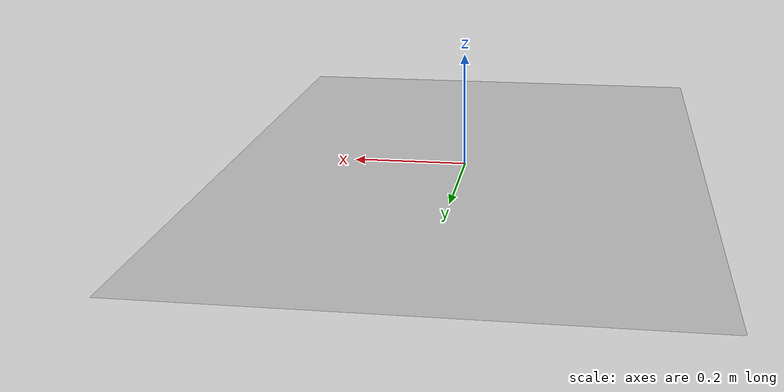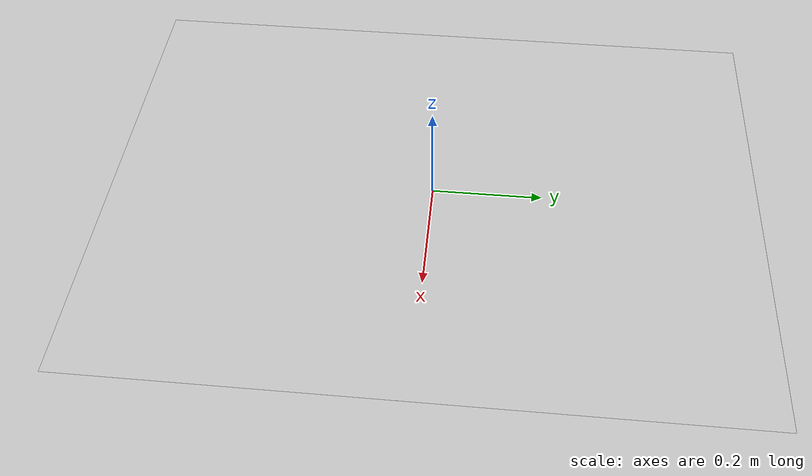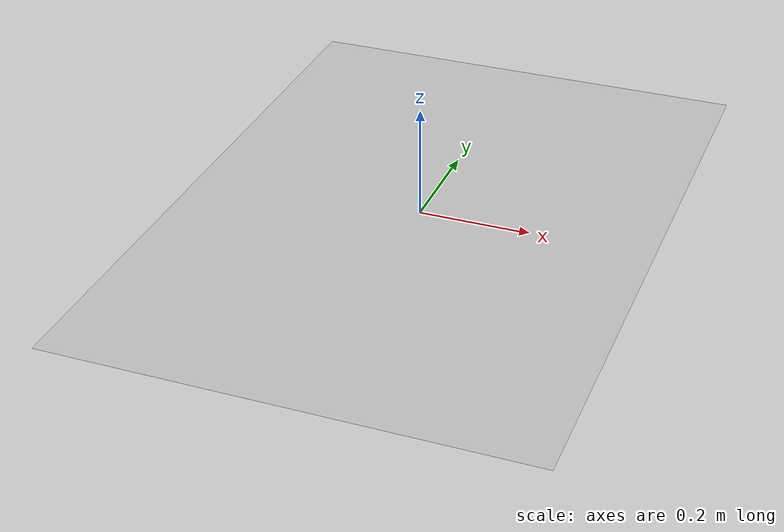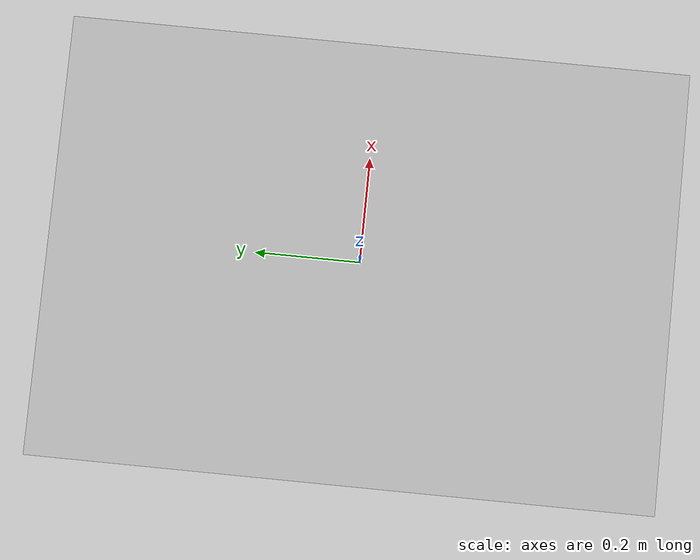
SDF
<?xml version="1.0"?>
<sdf version="1.6">
  <model name="aprilgrid">
    <allow_auto_disable>true</allow_auto_disable>
    <link name="link">
      <inertial>
        <mass>1.0</mass>
        <inertia>
          <ixx>1.0</ixx>
          <iyy>1.0</iyy>
          <izz>1.0</izz>
        </inertia>
      </inertial>

      <kinematic>true</kinematic>

      <visual name="visual">
        <cast_shadows>false</cast_shadows>
        <geometry>
          <plane>
            <!-- AprilGrid is A0 size -->
            <!-- https://en.wikipedia.org/wiki/Paper_size -->
            <size>0.841 1.189 0.001</size>
          </plane>
        </geometry>
        <material>
          <script>
            <uri>model://aprilgrid/materials/scripts</uri>
            <uri>model://aprilgrid/materials/textures</uri>
            <name>AprilGrid/Image</name>
          </script>
        </material>
      </visual>
    </link>
  </model>
</sdf>
